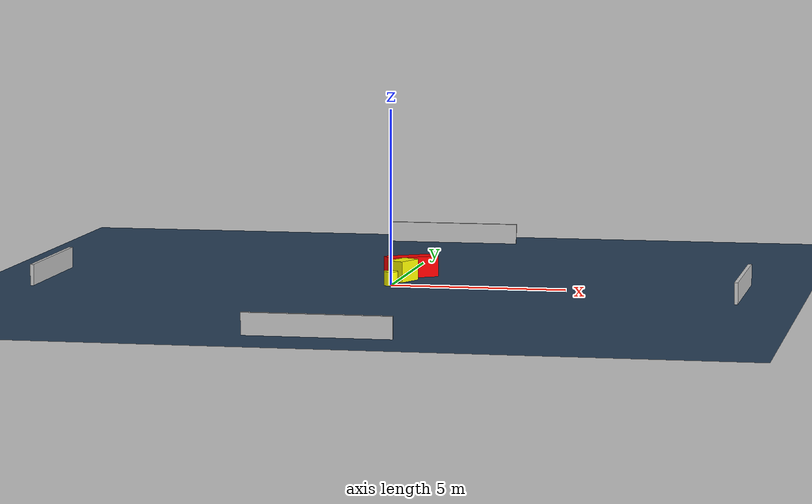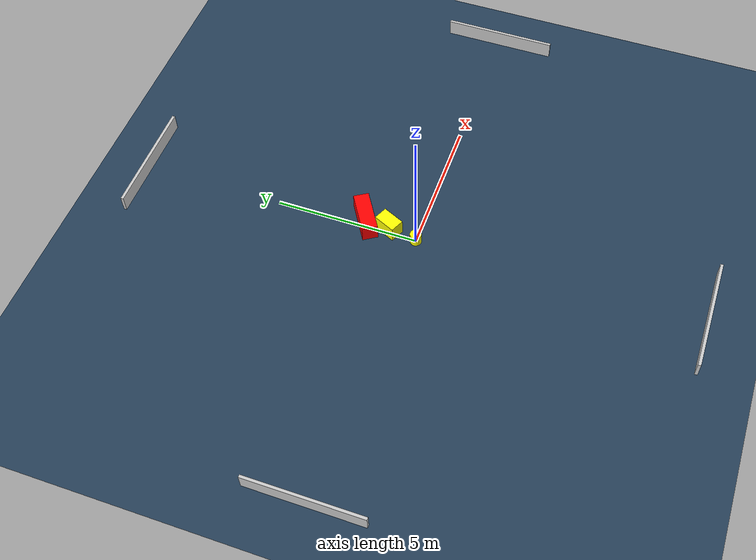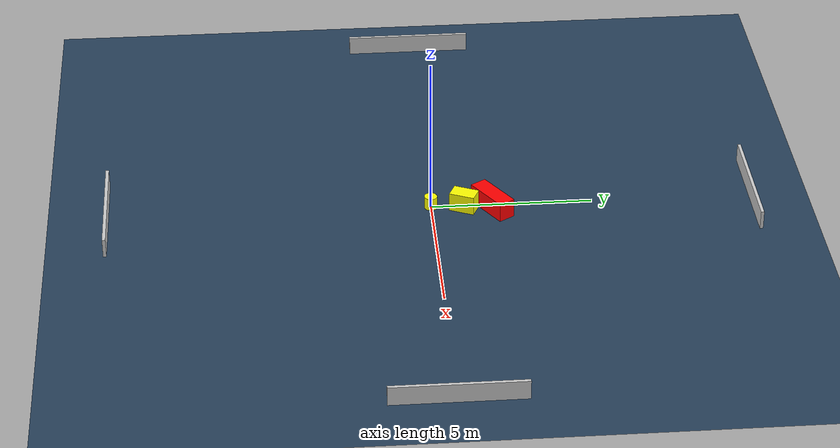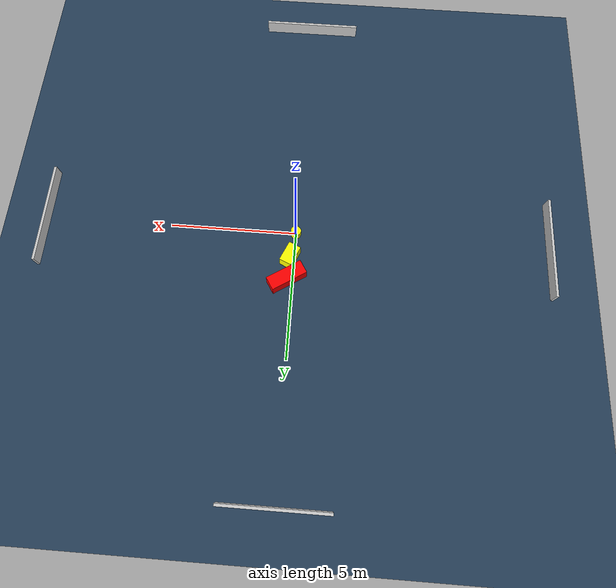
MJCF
<?xml version="1.0" ?>
<mujoco model="generated_environment">
  <option timestep="0.01" integrator="RK4" cone="elliptic"/>
  <default>
    <geom density="1"/>
  </default>
  <asset>
    <texture builtin="gradient" height="3072" name="skybox" rgb1="0.3 0.5 0.7" rgb2="0 0 0" type="skybox" width="512"/>
    <texture builtin="checker" height="300" name="groundplane" rgb1="0.2 0.3 0.4" rgb2="0.1 0.2 0.3" type="2d" width="300"/>
    <material name="groundplane" reflectance="0.2" texrepeat="5 5" texture="groundplane"/>
  </asset>
  <worldbody>
    <light dir="0 0 -1" directional="true" pos="0 0 1.5"/>
    <geom condim="3" friction="0.5 0.005 0.001" material="groundplane" name="floor" pos="0 0 0" size="0 0 0.05" type="plane"/>
    <body name="walls">
      <geom name="wall_1" condim="4" pos="-10.0 0.0 0.3" rgba="0.800000011920929 0.800000011920929 0.800000011920929 1.0" size="0.05 2.0 0.3" type="box"/>
      <geom name="wall_2" condim="4" pos="10.0 0.0 0.3" rgba="0.800000011920929 0.800000011920929 0.800000011920929 1.0" size="0.05 2.0 0.3" type="box"/>
      <geom name="wall_3" condim="4" pos="0.0 -10.0 0.3" rgba="0.800000011920929 0.800000011920929 0.800000011920929 1.0" size="2.0 0.05 0.3" type="box"/>
      <geom name="wall_4" condim="4" pos="0.0 10.0 0.3" rgba="0.800000011920929 0.800000011920929 0.800000011920929 1.0" size="2.0 0.05 0.3" type="box"/>
    </body>
    <body name="robot">
      <joint name="joint_x" type="slide" pos="0 0 0" axis="1 0 0"/>
      <joint name="joint_y" type="slide" pos="0 0 0" axis="0 1 0"/>
      <geom name="robot" type="cylinder" pos="0.0 0.0 0.2" size="0.2 0.2 0.0" mass="5.0" friction="1.0 0.005 0.0001" condim="4" rgba="1.0 1.0 0.0 1.0"/>
    </body>
    <body name="obstacle_1_movable">
      <geom name="obstacle_1_movable" condim="4" pos="0.15241871527102152 1.0202777340233715 0.3" euler="0 0 245.60475763003512" friction="0.0 0.005 0.001" rgba="1.0 1.0 0.0 1.0" size="0.39884337046322793 0.2475223171107103 0.3" type="box" mass="0.1"/>
      <joint type="free"/>
    </body>
    <body name="obstacle_2_static">
      <geom name="obstacle_2_static" condim="4" pos="0.22185194088000826 1.8952457726590775 0.3" euler="0 0 122.31652964024103" friction="0.0 0.005 0.001" rgba="1.0 0.0 0.0 1.0" size="0.26972658363002655 0.736141919570473 0.3" type="box"/>
    </body>
  </worldbody>
  <actuator>
    <motor name="actuator_x" joint="joint_x" gear="1" ctrlrange="-1 1"/>
    <motor name="actuator_y" joint="joint_y" gear="1" ctrlrange="-1 1"/>
  </actuator>
</mujoco>
